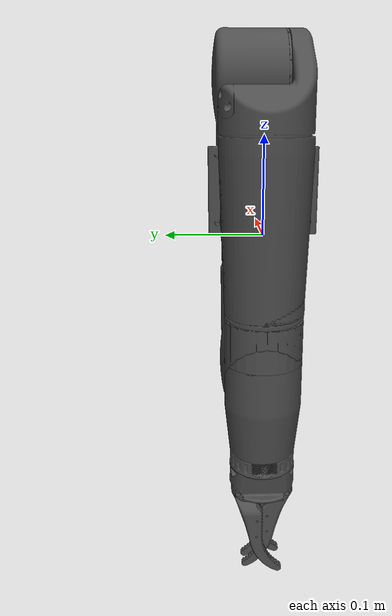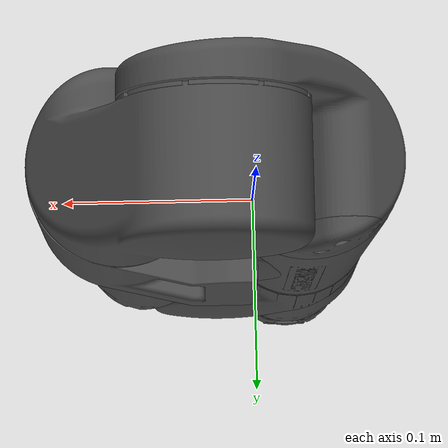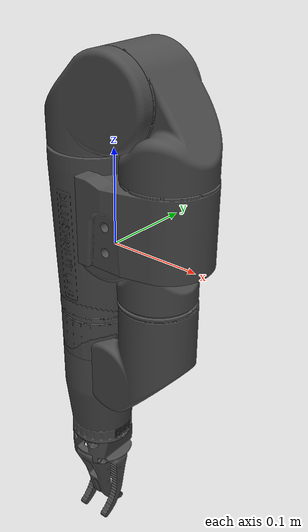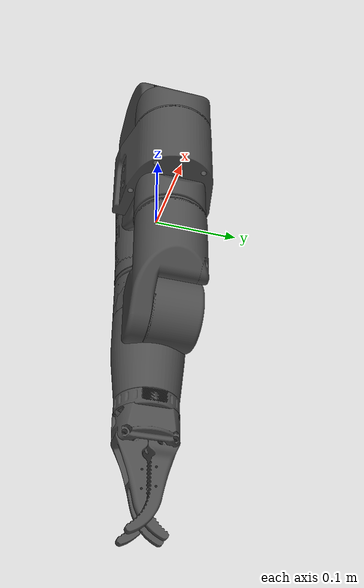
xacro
<?xml version="1.0" ?>
<robot name="bravo_7_example" xmlns:xacro="http://ros.org/wiki/xacro">
  <xacro:include filename="$(find reach_bravo_description_mk2)/urdf/bravo_7_ft.urdf.xacro"/>
    <link name="base_link"/>

    <xacro:bravo_7 parent="base_link" name="bravo">
      <origin xyz="0 0 0" rpy="0 0 0"/>
    </xacro:bravo_7>
</robot>

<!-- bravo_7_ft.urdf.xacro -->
<robot name="bravo_7" xmlns:xacro="http://ros.org/wiki/xacro">

    <xacro:macro name="bravo_7" params="parent *origin  name:=bravo_7">
         <joint name="${name}_joint" type="fixed">
            <xacro:insert_block name="origin" />
            <parent link="${parent}"/>
            <child link="${name}_base_link" />
            <origin xyz="0 0 0" rpy="0 0 0"/>
        </joint>
        <material name="bravo_black">
            <color rgba="0.3 0.3 0.3 1"/>
        </material>
        <link name="${name}_base_link">
            <visual>
                <geometry>
                    <mesh filename="package://reach_bravo_description_mk2/meshes/1019 A.stl"/>
                </geometry>
                <material name="bravo_black"/>
            </visual>
           <collision>
            <geometry>
                <box size="0.0625 0.1112 0.088"/>
            </geometry>
            <origin rpy="0 0 0" xyz="0.03625 00 0.044"/>
        </collision>

        <collision>
            <geometry>
                <box size="0.050 0.080 0.060"/>
            </geometry>
            <origin rpy="0 0 0" xyz="0.025 -0.04556 0.03"/>
        </collision>

        <collision>
            <geometry>
                <cylinder radius="0.046" length="0.0851"/>
            </geometry>
            <origin rpy="0 0 0" xyz="0.0675 0 0.04255"/>
        </collision>

        </link>

        <joint name="${name}_axis_g" type="continuous">
            <parent link="${name}_base_link"/>
            <origin xyz="0.0665 0 0.08" rpy="0 0 3.14159"/>
            <axis xyz="0 0 -1"/>
            <child link="${name}_1019_end_link"/>
        </joint>

        <link name="${name}_1019_end_link">
            <visual>
                <geometry>
                    <mesh filename="package://reach_bravo_description_mk2/meshes/1019 B.stl"/>
                </geometry>
                <origin xyz="0 0 0" rpy="0 0 3.14159"/>
                <material name="bravo_black"/>
            </visual>
        </link>

        <joint name="${name}_f_base_joint" type="fixed">
            <parent link="${name}_1019_end_link"/>
            <origin xyz="0 0 0.0058" rpy="0 0 0"/>
            <child link="${name}_1013_base_link"/>
        </joint>

        <link name="${name}_1013_base_link">
            <visual>
                <geometry>
                    <mesh filename="package://reach_bravo_description_mk2/meshes/1013 A.stl"/>
                </geometry>
                <origin rpy="0 0 3.14159" xyz="0.0 00 0.0"/>
                <material name="bravo_black"/>
            </visual>
            <collision>
                <geometry>
                    <cylinder radius="0.046" length="0.0667"/>
                </geometry>
                <origin rpy="0 0 0" xyz="0.0 0.0 0.03335"/>
            </collision>

            <collision>
                <geometry>
                    <cylinder radius="0.046" length="0.0738"/>
                </geometry>
                <origin rpy="1.5707 0 0 " xyz="0.046 0.0149 0.0667"/>
            </collision>
        </link>

        <joint name="${name}_axis_f" type="revolute">
            <parent link="${name}_1013_base_link"/>
            <origin xyz="0.046 0 0.0667" rpy="0 0 0"/>
            <axis xyz="0 -1 0"/>
            <child link="${name}_1013_joint_link"/>
            <limit effort="0" velocity="0" lower="0.0" upper="3.2" />
        </joint>

        <link name="${name}_1013_joint_link">
            <visual>
                <geometry>
                    <mesh filename="package://reach_bravo_description_mk2/meshes/1013 B.stl"/>
                </geometry>
                <material name="bravo_black"/>
                <origin rpy="0 0 3.14159" xyz="0.0 00 0.0"/>
            </visual>

            <collision>

                <geometry>
                    <cylinder radius="0.046" length="0.0228"/>
                </geometry>
                <origin rpy="1.5707 0 0 " xyz="0 -0.0334 0"/>
            </collision>

            <collision>
                <geometry>
                    <cylinder radius="0.046" length="0.05094"/>
                </geometry>
            <origin rpy="0 0 0" xyz="0.046 0 -0.02547"/>
        </collision>
        </link>

        <joint name="${name}_1013_end_joint" type="fixed">
            <parent link="${name}_1013_joint_link"/>
            <origin xyz="0.046 0 -0.05334" rpy="3.14159 0 3.14159"/>
            <child link="${name}_1013_end_link"/>
        </joint>

        <link name="${name}_1013_end_link"/>

        <joint name="${name}_e_base_joint" type="fixed">
            <parent link="${name}_1013_end_link"/>
            <origin xyz="0 0 0.182" rpy="0 0 0"/>
            <child link="${name}_1026_0_base_link"/>
        </joint>

        <link name="${name}_1026_0_base_link">
            <visual>
                <geometry>
                    <mesh filename="package://reach_bravo_description_mk2/meshes/1026 A.stl"/>
                </geometry>
                <material name="bravo_black"/>
            </visual>
            <collision>
                <geometry>
                    <cylinder radius="0.0408" length="0.059" />
                </geometry>
                <origin rpy="0 0 0" xyz="0 00 0.0295"/>
            </collision>

            <collision>
                <geometry>
                    <cylinder radius="0.0408" length="0.0599" />
                </geometry>
                <origin rpy="1.5707 0 0" xyz="0.0408 -0.01435 0.059"/>
            </collision>

        </link>

        <joint name="${name}_axis_e" type="revolute">
            <parent link="${name}_1026_0_base_link"/>
            <origin xyz="0.0408 0 0.059" rpy="0 0 0"/>
            <axis xyz="0 -1 0"/>
            <child link="${name}_1026_0_joint_link"/>
            <limit effort="0" velocity="0" lower="0.0" upper="3.2" />
        </joint>

        <link name="${name}_1026_0_joint_link">
            <visual>
                <geometry>
                    <mesh filename="package://reach_bravo_description_mk2/meshes/1026 B.stl"/>
                </geometry>
                <material name="bravo_black"/>
            </visual>
            <collision>
                <geometry>
                    <cylinder radius="0.0408" length="0.02335" />
                </geometry>
                <origin rpy="1.5707 0 0" xyz="0 0.027275 0 "/>
            </collision>

            <collision>
                <geometry>
                    <cylinder radius="0.0408" length="0.0946"/>
                </geometry>
                <origin rpy="0 0 0" xyz="0.0408 0 -0.0473"/>
            </collision>
        </link>

        <joint name="${name}_1026_0_end_joint" type="fixed">
            <parent link="${name}_1026_0_joint_link"/>
            <origin xyz="0.0408 0 -0.0956" rpy="3.14159 0 0"/>
            <child link="${name}_1026_0_end_link"/>
        </joint>

        <link name="${name}_1026_0_end_link"/>

        <joint name="${name}_d_base_joint" type="fixed">
            <parent link="${name}_1026_0_end_link"/>
            <origin xyz="0 0 0" rpy="0 0 0"/>
            <child link="${name}_1026_1_base_link"/>
        </joint>

        <link name="${name}_1026_1_base_link">
        </link>

        <joint name="${name}_axis_d" type="continuous">
            <parent link="${name}_1026_1_base_link"/>
            <origin xyz="0 0 0" rpy="0 0 0"/>
            <axis xyz="0 0 -1"/>
            <child link="${name}_1026_1_joint_link"/>
        </joint>

        <link name="${name}_1026_1_joint_link">
            <visual>
                <geometry>
                    <mesh filename="package://reach_bravo_description_mk2/meshes/1026 C.stl"/>
                </geometry>
                <material name="bravo_black"/>
                <origin xyz="0 0 0 " rpy="0 0 0"/>
            </visual>
            <collision>
                <geometry>
                    <cylinder radius="0.0408" length="0.003"/>
                </geometry>
                <origin rpy="0 0 3.14159" xyz="0 0 0.000"/>
            </collision>
        </link>

        <joint name="${name}_1026_1_end_joint" type="fixed">
            <parent link="${name}_1026_1_joint_link"/>
            <origin xyz="0 0 0.0054" rpy="0 0 3.14159"/>
            <child link="${name}_1026_1_end_link"/>
        </joint>

        <link name="${name}_1026_1_end_link"/>

        <joint name="${name}_c_base_joint" type="fixed">
            <parent link="${name}_1026_1_end_link"/>
            <origin xyz="0 0 0.0" rpy="0 0 0"/>
            <child link="${name}_1023_0_base_link"/>
        </joint>

        <link name="${name}_1023_0_base_link">
            <visual>
                <geometry>
                    <mesh filename="package://reach_bravo_description_mk2/meshes/1023 A.stl"/>
                </geometry>
                <material name="bravo_black"/>
            </visual>
            <collision>
                <geometry>
                    <cylinder radius="0.0408" length="0.059" />
                </geometry>
                <origin rpy="0 0 0" xyz="0 00 0.0295"/>
            </collision>

            <collision>
                <geometry>
                    <cylinder radius="0.0408" length="0.0599" />
                </geometry>
                <origin rpy="1.5707 0 0" xyz="0.0408 -0.01435 0.059"/>
            </collision>

        </link>

        <joint name="${name}_axis_c" type="revolute">
            <parent link="${name}_1023_0_base_link"/>
            <origin xyz="0.0408 0 0.059" rpy="0 0 0"/>
            <axis xyz="0 -1 0"/>
            <child link="${name}_1023_0_joint_link"/>
            <limit effort="0" velocity="0" lower="0.0" upper="3.2" />
        </joint>

        <link name="${name}_1023_0_joint_link">
            <visual>
                <geometry>
                    <mesh filename="package://reach_bravo_description_mk2/meshes/1023 B.stl"/>
                </geometry>
                <material name="bravo_black"/>
            </visual>
            <collision>
                <geometry>
                    <cylinder radius="0.0408" length="0.02335" />
                </geometry>
                <origin rpy="1.5707 0 0" xyz="0 0.027275 0 "/>
            </collision>

            <collision>
                <geometry>
                    <cylinder radius="0.0408" length="0.0946"/>
                </geometry>
                <origin rpy="0 0 0" xyz="0.0408 0 -0.0473"/>
            </collision>
        </link>

        <joint name="${name}_1023_0_end_joint" type="fixed">
            <parent link="${name}_1023_0_joint_link"/>
            <origin xyz="0.0408 0 -0.0956" rpy="3.14159 0 0"/>
            <child link="${name}_1023_0_end_link"/>
        </joint>

        <link name="${name}_1023_0_end_link"/>

        <joint name="${name}_b_base_joint" type="fixed">
            <parent link="${name}_1023_0_end_link"/>
            <origin xyz="0 0 0" rpy="0 0 0"/>
            <child link="${name}_1023_1_base_link"/>
        </joint>

        <link name="${name}_1023_1_base_link">
        </link>

        <joint name="${name}_axis_b" type="continuous">
            <parent link="${name}_1023_1_base_link"/>
            <origin xyz="0 0 0" rpy="0 0 3.14159"/>
            <axis xyz="0 0 -1"/>
            <child link="${name}_1023_1_joint_link"/>
        </joint>

        <link name="${name}_1023_1_joint_link">
            <visual>
                <geometry>
                    <mesh filename="package://reach_bravo_description_mk2/meshes/1023 C.stl"/>
                </geometry>
                <material name="bravo_black"/>
            </visual>
            <collision>
                <geometry>
                    <cylinder radius="0.0408" length="0.003"/>
                </geometry>
                <origin rpy="0 0 0" xyz="0 0 0.0"/>
            </collision>
        </link>

        <joint name="${name}_1023_1_end_joint" type="fixed">
            <parent link="${name}_1023_1_joint_link"/>
            <origin xyz="0 0 0.0054" rpy="0 0 0"/>
            <child link="${name}_1023_1_end_link"/>
        </joint>

        <link name="${name}_1023_1_end_link"/>

        <joint name="${name}_a_base_joint" type="fixed">
            <parent link="${name}_1023_1_end_link"/>
            <origin xyz="0 0 0.046" rpy="0 0 0"/>
            <child link="${name}_1038_base_link"/>
        </joint>

        <link name="${name}_1038_base_link">
            <visual>
                <geometry>
                    <mesh filename="package://reach_bravo_description_mk2/meshes/1038.stl"/>
                </geometry>
                <material name="bravo_black"/>
            </visual>
            <collision>
                <geometry>
                    <cylinder radius="0.0408" length="0.12535"/>
                </geometry>
                <origin xyz="0 0 0.06" rpy="0 0 0"/>
            </collision>

        </link>

        <joint name="${name}_1038_end_joint" type="fixed">
            <parent link="${name}_1038_base_link"/>
            <origin xyz="0 0 0.12535" rpy="0 -1.5707 0"/>
            <child link="${name}_1038_end_link"/>
        </joint>

        <link name="${name}_1038_end_link"/>

        <joint name="${name}_jaws_joint" type="fixed">
            <origin rpy="0 0 0" xyz=" 0 0 0.0"/>
            <parent link="${name}_1038_end_link"/>
            <child link="${name}_jaws_base_link"/>
        </joint>

        <link name="${name}_jaws_base_link">
        </link>
        <link name="${name}_push_rod"/>
        <joint name="${name}_axis_a" type="prismatic">
            <origin rpy="0 0 0" xyz="0 0 0.009"/>
            <parent link="${name}_jaws_base_link"/>
            <child link="${name}_push_rod"/>
            <axis xyz="0 0 1"/>
            <limit effort="10" lower="0" upper="0.01" velocity="10"/>
        </joint>

        <joint name="${name}_1070_base_joint" type="fixed">
            <parent link="${name}_1023_1_end_link"/>
            <child link="${name}_1070_base_link"/>
            <origin xyz="0 0 0" rpy="0 0 0"/>
        </joint>

        <link name="${name}_1070_base_link">
            <visual>
                <geometry>
                    <cylinder radius="0.0408" length="0.046"/>
                </geometry>
                <origin xyz="0 0 0.023" rpy="0 0 0.0"/>
                <material name="bravo_black"/>
            </visual>
            <collision>
                <geometry>
                    <cylinder radius="0.0408" length="0.046"/>
                </geometry>
                <origin xyz="0 0 0.023" rpy="0 0 0.0"/>
            </collision>
        </link>

        <link name="${name}_1030_base_link">
            <visual>
                <geometry>
                    <mesh filename="package://reach_bravo_description_mk2/meshes/1030.stl"/>
                </geometry>
                <material name="bravo_black"/>
            </visual>
            <collision>
                <geometry>
                    <cylinder radius="0.046" length="0.03033333"/>
                </geometry>
                <origin xyz="0 0 0.01516666" rpy="0 0 0"/>
            </collision>

            <collision>
                <geometry>
                    <cylinder radius="0.045" length="0.03033333"/>
                </geometry>
                <origin xyz="0 0 0.0455" rpy="0 0 0"/>
            </collision>

            <collision>
                <geometry>
                    <cylinder radius="0.044" length="0.03033333"/>
                </geometry>
                <origin xyz="0 0 0.075833333" rpy="0 0 0"/>
            </collision>

            <collision>
                <geometry>
                    <cylinder radius="0.043" length="0.03033333"/>
                </geometry>
                <origin xyz="0 0 0.1061666666" rpy="0 0 0"/>
            </collision>

            <collision>
                <geometry>
                    <cylinder radius="0.042" length="0.03033333"/>
                </geometry>
                <origin xyz="0 0 0.1365" rpy="0 0 0"/>
            </collision>
            <collision>
                <geometry>
                    <cylinder radius="0.041" length="0.03033333"/>
                </geometry>
                <origin xyz="0 0 0.1668333" rpy="0 0 0"/>
            </collision>
        </link>

        <joint name="${name}_1030_base_joint" type="fixed">
            <parent link="${name}_1013_end_link"/>
            <child link="${name}_1030_base_link"/>
            <origin xyz="0 0 0" rpy="0 0 0"/>
        </joint>

        <xacro:include filename="$(find reach_bravo_description_mk2)/urdf/end_effectors/finger_jaws.urdf.xacro"/>
        <xacro:bravo_finger_jaws parent="${name}_jaws_base_link" name="${name}_finger_jaws" axis_a="${name}_axis_a">
            <origin xyz="0 0 0" rpy="0 0 0"/>
        </xacro:bravo_finger_jaws>
    </xacro:macro>
</robot>

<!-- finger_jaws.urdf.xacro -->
<robot name="bravo_finger_jaws" xmlns:xacro="http://ros.org/wiki/xacro">
    <xacro:macro name="bravo_finger_jaws" params="parent *origin name:=bravo_finger_jaws axis_a">
        <material name="${name}_black">
            <color rgba="0.3 0.3 0.3 1" />
        </material>
        <joint name="${name}_joint" type="fixed">
            <xacro:insert_block name="origin" />
            <parent link="${parent}"/>
            <child link="${name}_base_link" />
            <origin xyz="0 0 0" rpy="0 0 0"/>
        </joint>

        <link name="${name}_base_link">
            <visual>
                <geometry>
                    <mesh filename="package://reach_bravo_description_mk2/meshes/RS2-257.stl"/>
                </geometry>
                <material name="${name}_black"/>
            </visual>
            <collision>
                <geometry>
                    <cylinder radius="0.0355" length="0.037"/>
                </geometry>
                <origin rpy="0 1.5707 0" xyz="0.0123 0 0"/>
            </collision>
        </link>

        <link name="${name}_rs2_300_link">
            <visual>
                <geometry>
                    <mesh filename="package://reach_bravo_description_mk2/meshes/RS2-300.stl"/>
                </geometry>
                <material name="${name}_black"/>

            </visual>
            <collision>
                <geometry>
                    <box size="0.124 0.035 0.042"/>
                </geometry>
                <origin rpy="0 0 2.78554548618295" xyz="0.0595 -0.0267 0"/>
            </collision>
        </link>

        <joint name="${name}_rs2_300_joint" type="revolute">
            <origin xyz="0.0241 0.0268 0" rpy="0 0 0"/>
            <axis xyz="0 0 1"/>
            <parent link="${name}_base_link"/>
            <child link="${name}_rs2_300_link"/>
            <limit lower="0" upper="1.0" effort="10" velocity="10"/>
            <mimic joint="${axis_a}" multiplier="54" offset="0"/>
        </joint>

        <link name="${name}_rs2_301_link">
            <visual>
                <geometry>
                    <mesh filename="package://reach_bravo_description_mk2/meshes/RS2-301.stl"/>
                </geometry>
                <material name="${name}_black"/>
            </visual>
            <collision>
                <geometry>
                    <box size="0.124 0.035 0.042"/>
                </geometry>
                <origin rpy="0 0 -2.78554548618295" xyz="0.0595 0.0267 0"/>
            </collision>
        </link>

        <joint name="${name}_rs2_301_joint" type="revolute">
            <origin xyz="0.0241 -0.0268 0" rpy="0 0 0"/>
            <axis xyz="0 0 -1"/>
            <parent link="${name}_base_link"/>
            <child link="${name}_rs2_301_link"/>
            <limit lower="0" upper="1.0" effort="10" velocity="10"/>
            <mimic joint="${name}_rs2_300_joint" multiplier="1" offset="0"/>
        </joint>
    </xacro:macro>
</robot>
